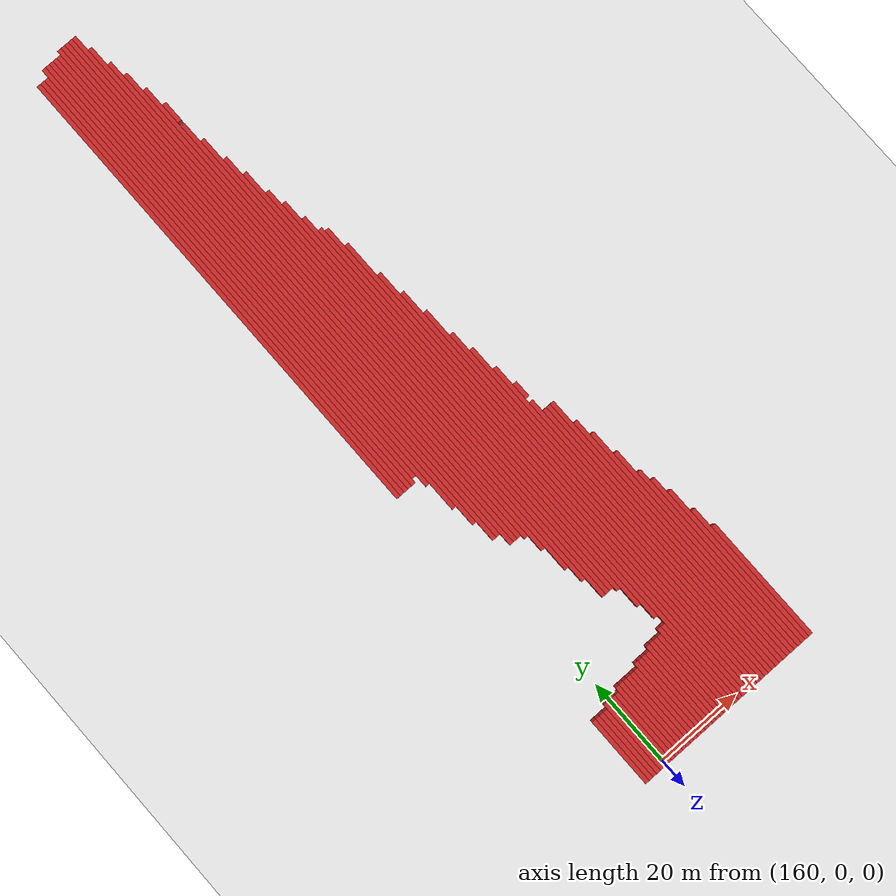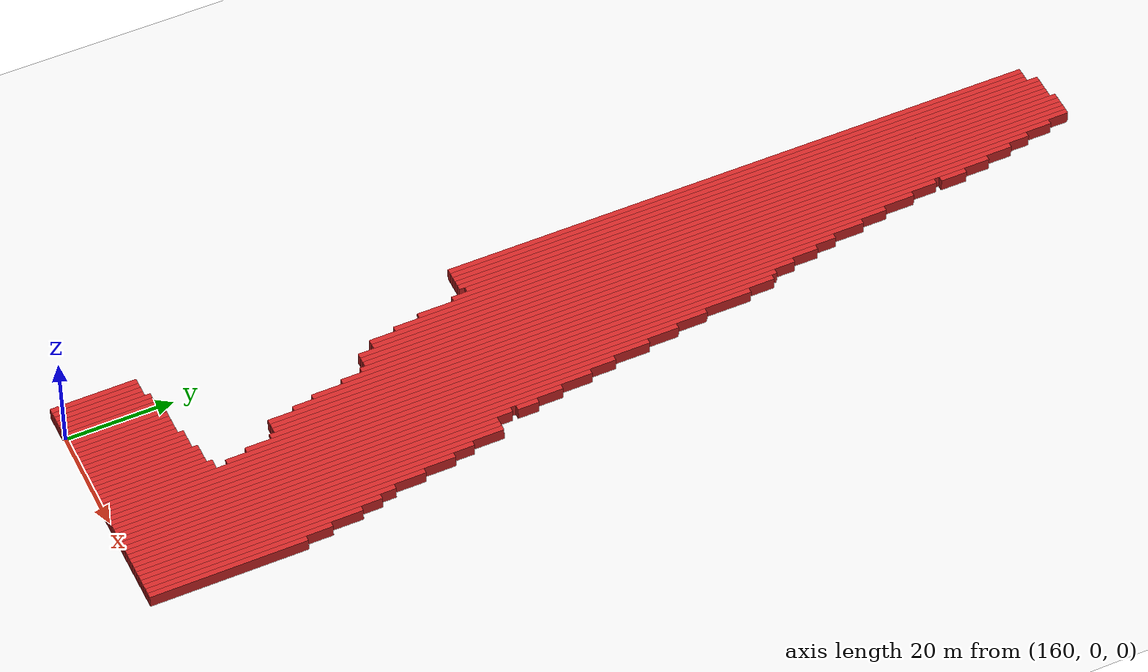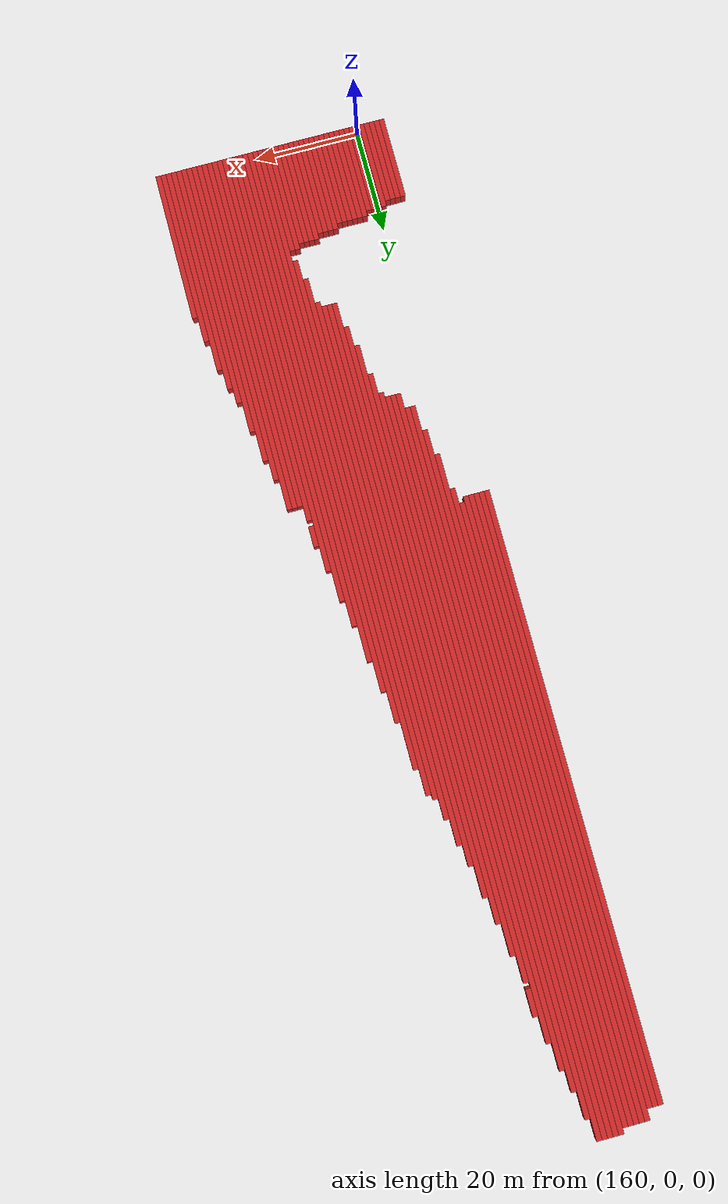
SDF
<sdf version="1.4">
 <world name="1_wall">
  <model name="ground_plane">
   <static>1</static>
   <link name="link">
    <collision name="collision">
     <geometry><plane><normal>0 0 1</normal><size>1000 1000</size></plane></geometry>
     <surface><friction><ode><mu>100</mu><mu2>50</mu2></ode></friction></surface>
    </collision>
    <visual name="visual">
     <cast_shadows>0</cast_shadows>
     <geometry><plane><normal>0 0 1</normal><size>10000 10000</size></plane></geometry>
     <material>
      <script><uri>file://media/materials/scripts/gazebo.material</uri><name>Gazebo/White</name></script>
     </material>
    </visual>
    <velocity_decay><linear>0</linear><angular>0</angular></velocity_decay>
   </link>
  </model>
  <model name="Wall_359">
   <static>1</static>
   <link name="Wall_359">
    <collision name="Wall_Collision_359">
     <geometry><box><size>16.0 1.0 2.5</size></box></geometry>
     <pose>0 0 1.25 0 -0 0</pose>
    </collision>
    <visual name="Wall_Visual_359">
     <pose>0 0 1.25 0 -0 0</pose>
     <geometry><box><size>16.0 1.0 2.5</size></box></geometry>
     <material>
      <script><uri>file://media/materials/scripts/gazebo.material</uri><name>Gazebo/Red</name></script>
     </material>
    </visual>
    <velocity_decay><linear>0</linear><angular>0</angular></velocity_decay>
    <pose>155.0 7.5 0 0 0 1.5707963267948966</pose>
   </link>
  </model>
  <model name="Wall_360">
   <static>1</static>
   <link name="Wall_360">
    <collision name="Wall_Collision_360">
     <geometry><box><size>113.0 1.0 2.5</size></box></geometry>
     <pose>0 0 1.25 0 -0 0</pose>
    </collision>
    <visual name="Wall_Visual_360">
     <pose>0 0 1.25 0 -0 0</pose>
     <geometry><box><size>113.0 1.0 2.5</size></box></geometry>
     <material>
      <script><uri>file://media/materials/scripts/gazebo.material</uri><name>Gazebo/Red</name></script>
     </material>
    </visual>
    <velocity_decay><linear>0</linear><angular>0</angular></velocity_decay>
    <pose>155.0 131.0 0 0 0 1.5707963267948966</pose>
   </link>
  </model>
  <model name="Wall_361">
   <static>1</static>
   <link name="Wall_361">
    <collision name="Wall_Collision_361">
     <geometry><box><size>16.0 1.0 2.5</size></box></geometry>
     <pose>0 0 1.25 0 -0 0</pose>
    </collision>
    <visual name="Wall_Visual_361">
     <pose>0 0 1.25 0 -0 0</pose>
     <geometry><box><size>16.0 1.0 2.5</size></box></geometry>
     <material>
      <script><uri>file://media/materials/scripts/gazebo.material</uri><name>Gazebo/Red</name></script>
     </material>
    </visual>
    <velocity_decay><linear>0</linear><angular>0</angular></velocity_decay>
    <pose>156.0 7.5 0 0 0 1.5707963267948966</pose>
   </link>
  </model>
  <model name="Wall_362">
   <static>1</static>
   <link name="Wall_362">
    <collision name="Wall_Collision_362">
     <geometry><box><size>113.0 1.0 2.5</size></box></geometry>
     <pose>0 0 1.25 0 -0 0</pose>
    </collision>
    <visual name="Wall_Visual_362">
     <pose>0 0 1.25 0 -0 0</pose>
     <geometry><box><size>113.0 1.0 2.5</size></box></geometry>
     <material>
      <script><uri>file://media/materials/scripts/gazebo.material</uri><name>Gazebo/Red</name></script>
     </material>
    </visual>
    <velocity_decay><linear>0</linear><angular>0</angular></velocity_decay>
    <pose>156.0 131.0 0 0 0 1.5707963267948966</pose>
   </link>
  </model>
  <model name="Wall_363">
   <static>1</static>
   <link name="Wall_363">
    <collision name="Wall_Collision_363">
     <geometry><box><size>16.0 1.0 2.5</size></box></geometry>
     <pose>0 0 1.25 0 -0 0</pose>
    </collision>
    <visual name="Wall_Visual_363">
     <pose>0 0 1.25 0 -0 0</pose>
     <geometry><box><size>16.0 1.0 2.5</size></box></geometry>
     <material>
      <script><uri>file://media/materials/scripts/gazebo.material</uri><name>Gazebo/Red</name></script>
     </material>
    </visual>
    <velocity_decay><linear>0</linear><angular>0</angular></velocity_decay>
    <pose>157.0 7.5 0 0 0 1.5707963267948966</pose>
   </link>
  </model>
  <model name="Wall_364">
   <static>1</static>
   <link name="Wall_364">
    <collision name="Wall_Collision_364">
     <geometry><box><size>113.0 1.0 2.5</size></box></geometry>
     <pose>0 0 1.25 0 -0 0</pose>
    </collision>
    <visual name="Wall_Visual_364">
     <pose>0 0 1.25 0 -0 0</pose>
     <geometry><box><size>113.0 1.0 2.5</size></box></geometry>
     <material>
      <script><uri>file://media/materials/scripts/gazebo.material</uri><name>Gazebo/Red</name></script>
     </material>
    </visual>
    <velocity_decay><linear>0</linear><angular>0</angular></velocity_decay>
    <pose>157.0 131.0 0 0 0 1.5707963267948966</pose>
   </link>
  </model>
  <model name="Wall_365">
   <static>1</static>
   <link name="Wall_365">
    <collision name="Wall_Collision_365">
     <geometry><box><size>16.0 1.0 2.5</size></box></geometry>
     <pose>0 0 1.25 0 -0 0</pose>
    </collision>
    <visual name="Wall_Visual_365">
     <pose>0 0 1.25 0 -0 0</pose>
     <geometry><box><size>16.0 1.0 2.5</size></box></geometry>
     <material>
      <script><uri>file://media/materials/scripts/gazebo.material</uri><name>Gazebo/Red</name></script>
     </material>
    </visual>
    <velocity_decay><linear>0</linear><angular>0</angular></velocity_decay>
    <pose>158.0 7.5 0 0 0 1.5707963267948966</pose>
   </link>
  </model>
  <model name="Wall_366">
   <static>1</static>
   <link name="Wall_366">
    <collision name="Wall_Collision_366">
     <geometry><box><size>115.0 1.0 2.5</size></box></geometry>
     <pose>0 0 1.25 0 -0 0</pose>
    </collision>
    <visual name="Wall_Visual_366">
     <pose>0 0 1.25 0 -0 0</pose>
     <geometry><box><size>115.0 1.0 2.5</size></box></geometry>
     <material>
      <script><uri>file://media/materials/scripts/gazebo.material</uri><name>Gazebo/Red</name></script>
     </material>
    </visual>
    <velocity_decay><linear>0</linear><angular>0</angular></velocity_decay>
    <pose>158.0 132.0 0 0 0 1.5707963267948966</pose>
   </link>
  </model>
  <model name="Wall_367">
   <static>1</static>
   <link name="Wall_367">
    <collision name="Wall_Collision_367">
     <geometry><box><size>17.0 1.0 2.5</size></box></geometry>
     <pose>0 0 1.25 0 -0 0</pose>
    </collision>
    <visual name="Wall_Visual_367">
     <pose>0 0 1.25 0 -0 0</pose>
     <geometry><box><size>17.0 1.0 2.5</size></box></geometry>
     <material>
      <script><uri>file://media/materials/scripts/gazebo.material</uri><name>Gazebo/Red</name></script>
     </material>
    </visual>
    <velocity_decay><linear>0</linear><angular>0</angular></velocity_decay>
    <pose>159.0 8.0 0 0 0 1.5707963267948966</pose>
   </link>
  </model>
  <model name="Wall_368">
   <static>1</static>
   <link name="Wall_368">
    <collision name="Wall_Collision_368">
     <geometry><box><size>115.0 1.0 2.5</size></box></geometry>
     <pose>0 0 1.25 0 -0 0</pose>
    </collision>
    <visual name="Wall_Visual_368">
     <pose>0 0 1.25 0 -0 0</pose>
     <geometry><box><size>115.0 1.0 2.5</size></box></geometry>
     <material>
      <script><uri>file://media/materials/scripts/gazebo.material</uri><name>Gazebo/Red</name></script>
     </material>
    </visual>
    <velocity_decay><linear>0</linear><angular>0</angular></velocity_decay>
    <pose>159.0 132.0 0 0 0 1.5707963267948966</pose>
   </link>
  </model>
  <model name="Wall_369">
   <static>1</static>
   <link name="Wall_369">
    <collision name="Wall_Collision_369">
     <geometry><box><size>17.0 1.0 2.5</size></box></geometry>
     <pose>0 0 1.25 0 -0 0</pose>
    </collision>
    <visual name="Wall_Visual_369">
     <pose>0 0 1.25 0 -0 0</pose>
     <geometry><box><size>17.0 1.0 2.5</size></box></geometry>
     <material>
      <script><uri>file://media/materials/scripts/gazebo.material</uri><name>Gazebo/Red</name></script>
     </material>
    </visual>
    <velocity_decay><linear>0</linear><angular>0</angular></velocity_decay>
    <pose>160.0 8.0 0 0 0 1.5707963267948966</pose>
   </link>
  </model>
  <model name="Wall_370">
   <static>1</static>
   <link name="Wall_370">
    <collision name="Wall_Collision_370">
     <geometry><box><size>114.0 1.0 2.5</size></box></geometry>
     <pose>0 0 1.25 0 -0 0</pose>
    </collision>
    <visual name="Wall_Visual_370">
     <pose>0 0 1.25 0 -0 0</pose>
     <geometry><box><size>114.0 1.0 2.5</size></box></geometry>
     <material>
      <script><uri>file://media/materials/scripts/gazebo.material</uri><name>Gazebo/Red</name></script>
     </material>
    </visual>
    <velocity_decay><linear>0</linear><angular>0</angular></velocity_decay>
    <pose>160.0 132.5 0 0 0 1.5707963267948966</pose>
   </link>
  </model>
  <model name="Wall_371">
   <static>1</static>
   <link name="Wall_371">
    <collision name="Wall_Collision_371">
     <geometry><box><size>17.0 1.0 2.5</size></box></geometry>
     <pose>0 0 1.25 0 -0 0</pose>
    </collision>
    <visual name="Wall_Visual_371">
     <pose>0 0 1.25 0 -0 0</pose>
     <geometry><box><size>17.0 1.0 2.5</size></box></geometry>
     <material>
      <script><uri>file://media/materials/scripts/gazebo.material</uri><name>Gazebo/Red</name></script>
     </material>
    </visual>
    <velocity_decay><linear>0</linear><angular>0</angular></velocity_decay>
    <pose>161.0 8.0 0 0 0 1.5707963267948966</pose>
   </link>
  </model>
  <model name="Wall_372">
   <static>1</static>
   <link name="Wall_372">
    <collision name="Wall_Collision_372">
     <geometry><box><size>117.0 1.0 2.5</size></box></geometry>
     <pose>0 0 1.25 0 -0 0</pose>
    </collision>
    <visual name="Wall_Visual_372">
     <pose>0 0 1.25 0 -0 0</pose>
     <geometry><box><size>117.0 1.0 2.5</size></box></geometry>
     <material>
      <script><uri>file://media/materials/scripts/gazebo.material</uri><name>Gazebo/Red</name></script>
     </material>
    </visual>
    <velocity_decay><linear>0</linear><angular>0</angular></velocity_decay>
    <pose>161.0 131.0 0 0 0 1.5707963267948966</pose>
   </link>
  </model>
  <model name="Wall_373">
   <static>1</static>
   <link name="Wall_373">
    <collision name="Wall_Collision_373">
     <geometry><box><size>17.0 1.0 2.5</size></box></geometry>
     <pose>0 0 1.25 0 -0 0</pose>
    </collision>
    <visual name="Wall_Visual_373">
     <pose>0 0 1.25 0 -0 0</pose>
     <geometry><box><size>17.0 1.0 2.5</size></box></geometry>
     <material>
      <script><uri>file://media/materials/scripts/gazebo.material</uri><name>Gazebo/Red</name></script>
     </material>
    </visual>
    <velocity_decay><linear>0</linear><angular>0</angular></velocity_decay>
    <pose>162.0 8.0 0 0 0 1.5707963267948966</pose>
   </link>
  </model>
  <model name="Wall_374">
   <static>1</static>
   <link name="Wall_374">
    <collision name="Wall_Collision_374">
     <geometry><box><size>124.0 1.0 2.5</size></box></geometry>
     <pose>0 0 1.25 0 -0 0</pose>
    </collision>
    <visual name="Wall_Visual_374">
     <pose>0 0 1.25 0 -0 0</pose>
     <geometry><box><size>124.0 1.0 2.5</size></box></geometry>
     <material>
      <script><uri>file://media/materials/scripts/gazebo.material</uri><name>Gazebo/Red</name></script>
     </material>
    </visual>
    <velocity_decay><linear>0</linear><angular>0</angular></velocity_decay>
    <pose>162.0 127.5 0 0 0 1.5707963267948966</pose>
   </link>
  </model>
  <model name="Wall_375">
   <static>1</static>
   <link name="Wall_375">
    <collision name="Wall_Collision_375">
     <geometry><box><size>18.0 1.0 2.5</size></box></geometry>
     <pose>0 0 1.25 0 -0 0</pose>
    </collision>
    <visual name="Wall_Visual_375">
     <pose>0 0 1.25 0 -0 0</pose>
     <geometry><box><size>18.0 1.0 2.5</size></box></geometry>
     <material>
      <script><uri>file://media/materials/scripts/gazebo.material</uri><name>Gazebo/Red</name></script>
     </material>
    </visual>
    <velocity_decay><linear>0</linear><angular>0</angular></velocity_decay>
    <pose>163.0 8.5 0 0 0 1.5707963267948966</pose>
   </link>
  </model>
  <model name="Wall_376">
   <static>1</static>
   <link name="Wall_376">
    <collision name="Wall_Collision_376">
     <geometry><box><size>130.0 1.0 2.5</size></box></geometry>
     <pose>0 0 1.25 0 -0 0</pose>
    </collision>
    <visual name="Wall_Visual_376">
     <pose>0 0 1.25 0 -0 0</pose>
     <geometry><box><size>130.0 1.0 2.5</size></box></geometry>
     <material>
      <script><uri>file://media/materials/scripts/gazebo.material</uri><name>Gazebo/Red</name></script>
     </material>
    </visual>
    <velocity_decay><linear>0</linear><angular>0</angular></velocity_decay>
    <pose>163.0 125.5 0 0 0 1.5707963267948966</pose>
   </link>
  </model>
  <model name="Wall_377">
   <static>1</static>
   <link name="Wall_377">
    <collision name="Wall_Collision_377">
     <geometry><box><size>18.0 1.0 2.5</size></box></geometry>
     <pose>0 0 1.25 0 -0 0</pose>
    </collision>
    <visual name="Wall_Visual_377">
     <pose>0 0 1.25 0 -0 0</pose>
     <geometry><box><size>18.0 1.0 2.5</size></box></geometry>
     <material>
      <script><uri>file://media/materials/scripts/gazebo.material</uri><name>Gazebo/Red</name></script>
     </material>
    </visual>
    <velocity_decay><linear>0</linear><angular>0</angular></velocity_decay>
    <pose>164.0 8.5 0 0 0 1.5707963267948966</pose>
   </link>
  </model>
  <model name="Wall_378">
   <static>1</static>
   <link name="Wall_378">
    <collision name="Wall_Collision_378">
     <geometry><box><size>135.0 1.0 2.5</size></box></geometry>
     <pose>0 0 1.25 0 -0 0</pose>
    </collision>
    <visual name="Wall_Visual_378">
     <pose>0 0 1.25 0 -0 0</pose>
     <geometry><box><size>135.0 1.0 2.5</size></box></geometry>
     <material>
      <script><uri>file://media/materials/scripts/gazebo.material</uri><name>Gazebo/Red</name></script>
     </material>
    </visual>
    <velocity_decay><linear>0</linear><angular>0</angular></velocity_decay>
    <pose>164.0 123.0 0 0 0 1.5707963267948966</pose>
   </link>
  </model>
  <model name="Wall_379">
   <static>1</static>
   <link name="Wall_379">
    <collision name="Wall_Collision_379">
     <geometry><box><size>18.0 1.0 2.5</size></box></geometry>
     <pose>0 0 1.25 0 -0 0</pose>
    </collision>
    <visual name="Wall_Visual_379">
     <pose>0 0 1.25 0 -0 0</pose>
     <geometry><box><size>18.0 1.0 2.5</size></box></geometry>
     <material>
      <script><uri>file://media/materials/scripts/gazebo.material</uri><name>Gazebo/Red</name></script>
     </material>
    </visual>
    <velocity_decay><linear>0</linear><angular>0</angular></velocity_decay>
    <pose>165.0 8.5 0 0 0 1.5707963267948966</pose>
   </link>
  </model>
  <model name="Wall_380">
   <static>1</static>
   <link name="Wall_380">
    <collision name="Wall_Collision_380">
     <geometry><box><size>135.0 1.0 2.5</size></box></geometry>
     <pose>0 0 1.25 0 -0 0</pose>
    </collision>
    <visual name="Wall_Visual_380">
     <pose>0 0 1.25 0 -0 0</pose>
     <geometry><box><size>135.0 1.0 2.5</size></box></geometry>
     <material>
      <script><uri>file://media/materials/scripts/gazebo.material</uri><name>Gazebo/Red</name></script>
     </material>
    </visual>
    <velocity_decay><linear>0</linear><angular>0</angular></velocity_decay>
    <pose>165.0 123.0 0 0 0 1.5707963267948966</pose>
   </link>
  </model>
  <model name="Wall_381">
   <static>1</static>
   <link name="Wall_381">
    <collision name="Wall_Collision_381">
     <geometry><box><size>18.0 1.0 2.5</size></box></geometry>
     <pose>0 0 1.25 0 -0 0</pose>
    </collision>
    <visual name="Wall_Visual_381">
     <pose>0 0 1.25 0 -0 0</pose>
     <geometry><box><size>18.0 1.0 2.5</size></box></geometry>
     <material>
      <script><uri>file://media/materials/scripts/gazebo.material</uri><name>Gazebo/Red</name></script>
     </material>
    </visual>
    <velocity_decay><linear>0</linear><angular>0</angular></velocity_decay>
    <pose>166.0 8.5 0 0 0 1.5707963267948966</pose>
   </link>
  </model>
  <model name="Wall_382">
   <static>1</static>
   <link name="Wall_382">
    <collision name="Wall_Collision_382">
     <geometry><box><size>138.0 1.0 2.5</size></box></geometry>
     <pose>0 0 1.25 0 -0 0</pose>
    </collision>
    <visual name="Wall_Visual_382">
     <pose>0 0 1.25 0 -0 0</pose>
     <geometry><box><size>138.0 1.0 2.5</size></box></geometry>
     <material>
      <script><uri>file://media/materials/scripts/gazebo.material</uri><name>Gazebo/Red</name></script>
     </material>
    </visual>
    <velocity_decay><linear>0</linear><angular>0</angular></velocity_decay>
    <pose>166.0 121.5 0 0 0 1.5707963267948966</pose>
   </link>
  </model>
  <model name="Wall_383">
   <static>1</static>
   <link name="Wall_383">
    <collision name="Wall_Collision_383">
     <geometry><box><size>18.0 1.0 2.5</size></box></geometry>
     <pose>0 0 1.25 0 -0 0</pose>
    </collision>
    <visual name="Wall_Visual_383">
     <pose>0 0 1.25 0 -0 0</pose>
     <geometry><box><size>18.0 1.0 2.5</size></box></geometry>
     <material>
      <script><uri>file://media/materials/scripts/gazebo.material</uri><name>Gazebo/Red</name></script>
     </material>
    </visual>
    <velocity_decay><linear>0</linear><angular>0</angular></velocity_decay>
    <pose>167.0 8.5 0 0 0 1.5707963267948966</pose>
   </link>
  </model>
  <model name="Wall_384">
   <static>1</static>
   <link name="Wall_384">
    <collision name="Wall_Collision_384">
     <geometry><box><size>138.0 1.0 2.5</size></box></geometry>
     <pose>0 0 1.25 0 -0 0</pose>
    </collision>
    <visual name="Wall_Visual_384">
     <pose>0 0 1.25 0 -0 0</pose>
     <geometry><box><size>138.0 1.0 2.5</size></box></geometry>
     <material>
      <script><uri>file://media/materials/scripts/gazebo.material</uri><name>Gazebo/Red</name></script>
     </material>
    </visual>
    <velocity_decay><linear>0</linear><angular>0</angular></velocity_decay>
    <pose>167.0 121.5 0 0 0 1.5707963267948966</pose>
   </link>
  </model>
  <model name="Wall_385">
   <static>1</static>
   <link name="Wall_385">
    <collision name="Wall_Collision_385">
     <geometry><box><size>18.0 1.0 2.5</size></box></geometry>
     <pose>0 0 1.25 0 -0 0</pose>
    </collision>
    <visual name="Wall_Visual_385">
     <pose>0 0 1.25 0 -0 0</pose>
     <geometry><box><size>18.0 1.0 2.5</size></box></geometry>
     <material>
      <script><uri>file://media/materials/scripts/gazebo.material</uri><name>Gazebo/Red</name></script>
     </material>
    </visual>
    <velocity_decay><linear>0</linear><angular>0</angular></velocity_decay>
    <pose>168.0 8.5 0 0 0 1.5707963267948966</pose>
   </link>
  </model>
  <model name="Wall_386">
   <static>1</static>
   <link name="Wall_386">
    <collision name="Wall_Collision_386">
     <geometry><box><size>134.0 1.0 2.5</size></box></geometry>
     <pose>0 0 1.25 0 -0 0</pose>
    </collision>
    <visual name="Wall_Visual_386">
     <pose>0 0 1.25 0 -0 0</pose>
     <geometry><box><size>134.0 1.0 2.5</size></box></geometry>
     <material>
      <script><uri>file://media/materials/scripts/gazebo.material</uri><name>Gazebo/Red</name></script>
     </material>
    </visual>
    <velocity_decay><linear>0</linear><angular>0</angular></velocity_decay>
    <pose>168.0 119.5 0 0 0 1.5707963267948966</pose>
   </link>
  </model>
  <model name="Wall_387">
   <static>1</static>
   <link name="Wall_387">
    <collision name="Wall_Collision_387">
     <geometry><box><size>19.0 1.0 2.5</size></box></geometry>
     <pose>0 0 1.25 0 -0 0</pose>
    </collision>
    <visual name="Wall_Visual_387">
     <pose>0 0 1.25 0 -0 0</pose>
     <geometry><box><size>19.0 1.0 2.5</size></box></geometry>
     <material>
      <script><uri>file://media/materials/scripts/gazebo.material</uri><name>Gazebo/Red</name></script>
     </material>
    </visual>
    <velocity_decay><linear>0</linear><angular>0</angular></velocity_decay>
    <pose>169.0 9.0 0 0 0 1.5707963267948966</pose>
   </link>
  </model>
  <model name="Wall_388">
   <static>1</static>
   <link name="Wall_388">
    <collision name="Wall_Collision_388">
     <geometry><box><size>130.0 1.0 2.5</size></box></geometry>
     <pose>0 0 1.25 0 -0 0</pose>
    </collision>
    <visual name="Wall_Visual_388">
     <pose>0 0 1.25 0 -0 0</pose>
     <geometry><box><size>130.0 1.0 2.5</size></box></geometry>
     <material>
      <script><uri>file://media/materials/scripts/gazebo.material</uri><name>Gazebo/Red</name></script>
     </material>
    </visual>
    <velocity_decay><linear>0</linear><angular>0</angular></velocity_decay>
    <pose>169.0 116.5 0 0 0 1.5707963267948966</pose>
   </link>
  </model>
  <model name="Wall_389">
   <static>1</static>
   <link name="Wall_389">
    <collision name="Wall_Collision_389">
     <geometry><box><size>19.0 1.0 2.5</size></box></geometry>
     <pose>0 0 1.25 0 -0 0</pose>
    </collision>
    <visual name="Wall_Visual_389">
     <pose>0 0 1.25 0 -0 0</pose>
     <geometry><box><size>19.0 1.0 2.5</size></box></geometry>
     <material>
      <script><uri>file://media/materials/scripts/gazebo.material</uri><name>Gazebo/Red</name></script>
     </material>
    </visual>
    <velocity_decay><linear>0</linear><angular>0</angular></velocity_decay>
    <pose>170.0 9.0 0 0 0 1.5707963267948966</pose>
   </link>
  </model>
  <model name="Wall_390">
   <static>1</static>
   <link name="Wall_390">
    <collision name="Wall_Collision_390">
     <geometry><box><size>130.0 1.0 2.5</size></box></geometry>
     <pose>0 0 1.25 0 -0 0</pose>
    </collision>
    <visual name="Wall_Visual_390">
     <pose>0 0 1.25 0 -0 0</pose>
     <geometry><box><size>130.0 1.0 2.5</size></box></geometry>
     <material>
      <script><uri>file://media/materials/scripts/gazebo.material</uri><name>Gazebo/Red</name></script>
     </material>
    </visual>
    <velocity_decay><linear>0</linear><angular>0</angular></velocity_decay>
    <pose>170.0 112.5 0 0 0 1.5707963267948966</pose>
   </link>
  </model>
  <model name="Wall_391">
   <static>1</static>
   <link name="Wall_391">
    <collision name="Wall_Collision_391">
     <geometry><box><size>19.0 1.0 2.5</size></box></geometry>
     <pose>0 0 1.25 0 -0 0</pose>
    </collision>
    <visual name="Wall_Visual_391">
     <pose>0 0 1.25 0 -0 0</pose>
     <geometry><box><size>19.0 1.0 2.5</size></box></geometry>
     <material>
      <script><uri>file://media/materials/scripts/gazebo.material</uri><name>Gazebo/Red</name></script>
     </material>
    </visual>
    <velocity_decay><linear>0</linear><angular>0</angular></velocity_decay>
    <pose>171.0 9.0 0 0 0 1.5707963267948966</pose>
   </link>
  </model>
  <model name="Wall_392">
   <static>1</static>
   <link name="Wall_392">
    <collision name="Wall_Collision_392">
     <geometry><box><size>131.0 1.0 2.5</size></box></geometry>
     <pose>0 0 1.25 0 -0 0</pose>
    </collision>
    <visual name="Wall_Visual_392">
     <pose>0 0 1.25 0 -0 0</pose>
     <geometry><box><size>131.0 1.0 2.5</size></box></geometry>
     <material>
      <script><uri>file://media/materials/scripts/gazebo.material</uri><name>Gazebo/Red</name></script>
     </material>
    </visual>
    <velocity_decay><linear>0</linear><angular>0</angular></velocity_decay>
    <pose>171.0 107.0 0 0 0 1.5707963267948966</pose>
   </link>
  </model>
  <model name="Wall_393">
   <static>1</static>
   <link name="Wall_393">
    <collision name="Wall_Collision_393">
     <geometry><box><size>19.0 1.0 2.5</size></box></geometry>
     <pose>0 0 1.25 0 -0 0</pose>
    </collision>
    <visual name="Wall_Visual_393">
     <pose>0 0 1.25 0 -0 0</pose>
     <geometry><box><size>19.0 1.0 2.5</size></box></geometry>
     <material>
      <script><uri>file://media/materials/scripts/gazebo.material</uri><name>Gazebo/Red</name></script>
     </material>
    </visual>
    <velocity_decay><linear>0</linear><angular>0</angular></velocity_decay>
    <pose>172.0 9.0 0 0 0 1.5707963267948966</pose>
   </link>
  </model>
  <model name="Wall_394">
   <static>1</static>
   <link name="Wall_394">
    <collision name="Wall_Collision_394">
     <geometry><box><size>124.0 1.0 2.5</size></box></geometry>
     <pose>0 0 1.25 0 -0 0</pose>
    </collision>
    <visual name="Wall_Visual_394">
     <pose>0 0 1.25 0 -0 0</pose>
     <geometry><box><size>124.0 1.0 2.5</size></box></geometry>
     <material>
      <script><uri>file://media/materials/scripts/gazebo.material</uri><name>Gazebo/Red</name></script>
     </material>
    </visual>
    <velocity_decay><linear>0</linear><angular>0</angular></velocity_decay>
    <pose>172.0 99.5 0 0 0 1.5707963267948966</pose>
   </link>
  </model>
  <model name="Wall_395">
   <static>1</static>
   <link name="Wall_395">
    <collision name="Wall_Collision_395">
     <geometry><box><size>5.0 1.0 2.5</size></box></geometry>
     <pose>0 0 1.25 0 -0 0</pose>
    </collision>
    <visual name="Wall_Visual_395">
     <pose>0 0 1.25 0 -0 0</pose>
     <geometry><box><size>5.0 1.0 2.5</size></box></geometry>
     <material>
      <script><uri>file://media/materials/scripts/gazebo.material</uri><name>Gazebo/Red</name></script>
     </material>
    </visual>
    <velocity_decay><linear>0</linear><angular>0</angular></velocity_decay>
    <pose>172.0 165.0 0 0 0 1.5707963267948966</pose>
   </link>
  </model>
  <model name="Wall_396">
   <static>1</static>
   <link name="Wall_396">
    <collision name="Wall_Collision_396">
     <geometry><box><size>20.0 1.0 2.5</size></box></geometry>
     <pose>0 0 1.25 0 -0 0</pose>
    </collision>
    <visual name="Wall_Visual_396">
     <pose>0 0 1.25 0 -0 0</pose>
     <geometry><box><size>20.0 1.0 2.5</size></box></geometry>
     <material>
      <script><uri>file://media/materials/scripts/gazebo.material</uri><name>Gazebo/Red</name></script>
     </material>
    </visual>
    <velocity_decay><linear>0</linear><angular>0</angular></velocity_decay>
    <pose>173.0 9.5 0 0 0 1.5707963267948966</pose>
   </link>
  </model>
  <model name="Wall_397">
   <static>1</static>
   <link name="Wall_397">
    <collision name="Wall_Collision_397">
     <geometry><box><size>124.0 1.0 2.5</size></box></geometry>
     <pose>0 0 1.25 0 -0 0</pose>
    </collision>
    <visual name="Wall_Visual_397">
     <pose>0 0 1.25 0 -0 0</pose>
     <geometry><box><size>124.0 1.0 2.5</size></box></geometry>
     <material>
      <script><uri>file://media/materials/scripts/gazebo.material</uri><name>Gazebo/Red</name></script>
     </material>
    </visual>
    <velocity_decay><linear>0</linear><angular>0</angular></velocity_decay>
    <pose>173.0 94.5 0 0 0 1.5707963267948966</pose>
   </link>
  </model>
  <model name="Wall_398">
   <static>1</static>
   <link name="Wall_398">
    <collision name="Wall_Collision_398">
     <geometry><box><size>20.0 1.0 2.5</size></box></geometry>
     <pose>0 0 1.25 0 -0 0</pose>
    </collision>
    <visual name="Wall_Visual_398">
     <pose>0 0 1.25 0 -0 0</pose>
     <geometry><box><size>20.0 1.0 2.5</size></box></geometry>
     <material>
      <script><uri>file://media/materials/scripts/gazebo.material</uri><name>Gazebo/Red</name></script>
     </material>
    </visual>
    <velocity_decay><linear>0</linear><angular>0</angular></velocity_decay>
    <pose>174.0 9.5 0 0 0 1.5707963267948966</pose>
   </link>
  </model>
  <model name="Wall_399">
   <static>1</static>
   <link name="Wall_399">
    <collision name="Wall_Collision_399">
     <geometry><box><size>118.0 1.0 2.5</size></box></geometry>
     <pose>0 0 1.25 0 -0 0</pose>
    </collision>
    <visual name="Wall_Visual_399">
     <pose>0 0 1.25 0 -0 0</pose>
     <geometry><box><size>118.0 1.0 2.5</size></box></geometry>
     <material>
      <script><uri>file://media/materials/scripts/gazebo.material</uri><name>Gazebo/Red</name></script>
     </material>
    </visual>
    <velocity_decay><linear>0</linear><angular>0</angular></velocity_decay>
    <pose>174.0 91.5 0 0 0 1.5707963267948966</pose>
   </link>
  </model>
  <model name="Wall_400">
   <static>1</static>
   <link name="Wall_400">
    <collision name="Wall_Collision_400">
     <geometry><box><size>20.0 1.0 2.5</size></box></geometry>
     <pose>0 0 1.25 0 -0 0</pose>
    </collision>
    <visual name="Wall_Visual_400">
     <pose>0 0 1.25 0 -0 0</pose>
     <geometry><box><size>20.0 1.0 2.5</size></box></geometry>
     <material>
      <script><uri>file://media/materials/scripts/gazebo.material</uri><name>Gazebo/Red</name></script>
     </material>
    </visual>
    <velocity_decay><linear>0</linear><angular>0</angular></velocity_decay>
    <pose>175.0 9.5 0 0 0 1.5707963267948966</pose>
   </link>
  </model>
  <model name="Wall_401">
   <static>1</static>
   <link name="Wall_401">
    <collision name="Wall_Collision_401">
     <geometry><box><size>113.0 1.0 2.5</size></box></geometry>
     <pose>0 0 1.25 0 -0 0</pose>
    </collision>
    <visual name="Wall_Visual_401">
     <pose>0 0 1.25 0 -0 0</pose>
     <geometry><box><size>113.0 1.0 2.5</size></box></geometry>
     <material>
      <script><uri>file://media/materials/scripts/gazebo.material</uri><name>Gazebo/Red</name></script>
     </material>
    </visual>
    <velocity_decay><linear>0</linear><angular>0</angular></velocity_decay>
    <pose>175.0 89.0 0 0 0 1.5707963267948966</pose>
   </link>
  </model>
  <model name="Wall_402">
   <static>1</static>
   <link name="Wall_402">
    <collision name="Wall_Collision_402">
     <geometry><box><size>20.0 1.0 2.5</size></box></geometry>
     <pose>0 0 1.25 0 -0 0</pose>
    </collision>
    <visual name="Wall_Visual_402">
     <pose>0 0 1.25 0 -0 0</pose>
     <geometry><box><size>20.0 1.0 2.5</size></box></geometry>
     <material>
      <script><uri>file://media/materials/scripts/gazebo.material</uri><name>Gazebo/Red</name></script>
     </material>
    </visual>
    <velocity_decay><linear>0</linear><angular>0</angular></velocity_decay>
    <pose>176.0 9.5 0 0 0 1.5707963267948966</pose>
   </link>
  </model>
  <model name="Wall_403">
   <static>1</static>
   <link name="Wall_403">
    <collision name="Wall_Collision_403">
     <geometry><box><size>108.0 1.0 2.5</size></box></geometry>
     <pose>0 0 1.25 0 -0 0</pose>
    </collision>
    <visual name="Wall_Visual_403">
     <pose>0 0 1.25 0 -0 0</pose>
     <geometry><box><size>108.0 1.0 2.5</size></box></geometry>
     <material>
      <script><uri>file://media/materials/scripts/gazebo.material</uri><name>Gazebo/Red</name></script>
     </material>
    </visual>
    <velocity_decay><linear>0</linear><angular>0</angular></velocity_decay>
    <pose>176.0 85.5 0 0 0 1.5707963267948966</pose>
   </link>
  </model>
  <model name="Wall_404">
   <static>1</static>
   <link name="Wall_404">
    <collision name="Wall_Collision_404">
     <geometry><box><size>21.0 1.0 2.5</size></box></geometry>
     <pose>0 0 1.25 0 -0 0</pose>
    </collision>
    <visual name="Wall_Visual_404">
     <pose>0 0 1.25 0 -0 0</pose>
     <geometry><box><size>21.0 1.0 2.5</size></box></geometry>
     <material>
      <script><uri>file://media/materials/scripts/gazebo.material</uri><name>Gazebo/Red</name></script>
     </material>
    </visual>
    <velocity_decay><linear>0</linear><angular>0</angular></velocity_decay>
    <pose>177.0 10.0 0 0 0 1.5707963267948966</pose>
   </link>
  </model>
  <model name="Wall_405">
   <static>1</static>
   <link name="Wall_405">
    <collision name="Wall_Collision_405">
     <geometry><box><size>109.0 1.0 2.5</size></box></geometry>
     <pose>0 0 1.25 0 -0 0</pose>
    </collision>
    <visual name="Wall_Visual_405">
     <pose>0 0 1.25 0 -0 0</pose>
     <geometry><box><size>109.0 1.0 2.5</size></box></geometry>
     <material>
      <script><uri>file://media/materials/scripts/gazebo.material</uri><name>Gazebo/Red</name></script>
     </material>
    </visual>
    <velocity_decay><linear>0</linear><angular>0</angular></velocity_decay>
    <pose>177.0 81.0 0 0 0 1.5707963267948966</pose>
   </link>
  </model>
  <model name="Wall_406">
   <static>1</static>
   <link name="Wall_406">
    <collision name="Wall_Collision_406">
     <geometry><box><size>21.0 1.0 2.5</size></box></geometry>
     <pose>0 0 1.25 0 -0 0</pose>
    </collision>
    <visual name="Wall_Visual_406">
     <pose>0 0 1.25 0 -0 0</pose>
     <geometry><box><size>21.0 1.0 2.5</size></box></geometry>
     <material>
      <script><uri>file://media/materials/scripts/gazebo.material</uri><name>Gazebo/Red</name></script>
     </material>
    </visual>
    <velocity_decay><linear>0</linear><angular>0</angular></velocity_decay>
    <pose>178.0 10.0 0 0 0 1.5707963267948966</pose>
   </link>
  </model>
  <model name="Wall_407">
   <static>1</static>
   <link name="Wall_407">
    <collision name="Wall_Collision_407">
     <geometry><box><size>108.0 1.0 2.5</size></box></geometry>
     <pose>0 0 1.25 0 -0 0</pose>
    </collision>
    <visual name="Wall_Visual_407">
     <pose>0 0 1.25 0 -0 0</pose>
     <geometry><box><size>108.0 1.0 2.5</size></box></geometry>
     <material>
      <script><uri>file://media/materials/scripts/gazebo.material</uri><name>Gazebo/Red</name></script>
     </material>
    </visual>
    <velocity_decay><linear>0</linear><angular>0</angular></velocity_decay>
    <pose>178.0 76.5 0 0 0 1.5707963267948966</pose>
   </link>
  </model>
  <model name="Wall_408">
   <static>1</static>
   <link name="Wall_408">
    <collision name="Wall_Collision_408">
     <geometry><box><size>127.0 1.0 2.5</size></box></geometry>
     <pose>0 0 1.25 0 -0 0</pose>
    </collision>
    <visual name="Wall_Visual_408">
     <pose>0 0 1.25 0 -0 0</pose>
     <geometry><box><size>127.0 1.0 2.5</size></box></geometry>
     <material>
      <script><uri>file://media/materials/scripts/gazebo.material</uri><name>Gazebo/Red</name></script>
     </material>
    </visual>
    <velocity_decay><linear>0</linear><angular>0</angular></velocity_decay>
    <pose>179.0 63.0 0 0 0 1.5707963267948966</pose>
   </link>
  </model>
  <model name="Wall_409">
   <static>1</static>
   <link name="Wall_409">
    <collision name="Wall_Collision_409">
     <geometry><box><size>126.0 1.0 2.5</size></box></geometry>
     <pose>0 0 1.25 0 -0 0</pose>
    </collision>
    <visual name="Wall_Visual_409">
     <pose>0 0 1.25 0 -0 0</pose>
     <geometry><box><size>126.0 1.0 2.5</size></box></geometry>
     <material>
      <script><uri>file://media/materials/scripts/gazebo.material</uri><name>Gazebo/Red</name></script>
     </material>
    </visual>
    <velocity_decay><linear>0</linear><angular>0</angular></velocity_decay>
    <pose>180.0 62.5 0 0 0 1.5707963267948966</pose>
   </link>
  </model>
  <model name="Wall_410">
   <static>1</static>
   <link name="Wall_410">
    <collision name="Wall_Collision_410">
     <geometry><box><size>121.0 1.0 2.5</size></box></geometry>
     <pose>0 0 1.25 0 -0 0</pose>
    </collision>
    <visual name="Wall_Visual_410">
     <pose>0 0 1.25 0 -0 0</pose>
     <geometry><box><size>121.0 1.0 2.5</size></box></geometry>
     <material>
      <script><uri>file://media/materials/scripts/gazebo.material</uri><name>Gazebo/Red</name></script>
     </material>
    </visual>
    <velocity_decay><linear>0</linear><angular>0</angular></velocity_decay>
    <pose>181.0 60.0 0 0 0 1.5707963267948966</pose>
   </link>
  </model>
  <model name="Wall_411">
   <static>1</static>
   <link name="Wall_411">
    <collision name="Wall_Collision_411">
     <geometry><box><size>112.0 1.0 2.5</size></box></geometry>
     <pose>0 0 1.25 0 -0 0</pose>
    </collision>
    <visual name="Wall_Visual_411">
     <pose>0 0 1.25 0 -0 0</pose>
     <geometry><box><size>112.0 1.0 2.5</size></box></geometry>
     <material>
      <script><uri>file://media/materials/scripts/gazebo.material</uri><name>Gazebo/Red</name></script>
     </material>
    </visual>
    <velocity_decay><linear>0</linear><angular>0</angular></velocity_decay>
    <pose>182.0 55.5 0 0 0 1.5707963267948966</pose>
   </link>
  </model>
  <model name="Wall_412">
   <static>1</static>
   <link name="Wall_412">
    <collision name="Wall_Collision_412">
     <geometry><box><size>106.0 1.0 2.5</size></box></geometry>
     <pose>0 0 1.25 0 -0 0</pose>
    </collision>
    <visual name="Wall_Visual_412">
     <pose>0 0 1.25 0 -0 0</pose>
     <geometry><box><size>106.0 1.0 2.5</size></box></geometry>
     <material>
      <script><uri>file://media/materials/scripts/gazebo.material</uri><name>Gazebo/Red</name></script>
     </material>
    </visual>
    <velocity_decay><linear>0</linear><angular>0</angular></velocity_decay>
    <pose>183.0 52.5 0 0 0 1.5707963267948966</pose>
   </link>
  </model>
  <model name="Wall_413">
   <static>1</static>
   <link name="Wall_413">
    <collision name="Wall_Collision_413">
     <geometry><box><size>100.0 1.0 2.5</size></box></geometry>
     <pose>0 0 1.25 0 -0 0</pose>
    </collision>
    <visual name="Wall_Visual_413">
     <pose>0 0 1.25 0 -0 0</pose>
     <geometry><box><size>100.0 1.0 2.5</size></box></geometry>
     <material>
      <script><uri>file://media/materials/scripts/gazebo.material</uri><name>Gazebo/Red</name></script>
     </material>
    </visual>
    <velocity_decay><linear>0</linear><angular>0</angular></velocity_decay>
    <pose>184.0 49.5 0 0 0 1.5707963267948966</pose>
   </link>
  </model>
  <model name="Wall_414">
   <static>1</static>
   <link name="Wall_414">
    <collision name="Wall_Collision_414">
     <geometry><box><size>93.0 1.0 2.5</size></box></geometry>
     <pose>0 0 1.25 0 -0 0</pose>
    </collision>
    <visual name="Wall_Visual_414">
     <pose>0 0 1.25 0 -0 0</pose>
     <geometry><box><size>93.0 1.0 2.5</size></box></geometry>
     <material>
      <script><uri>file://media/materials/scripts/gazebo.material</uri><name>Gazebo/Red</name></script>
     </material>
    </visual>
    <velocity_decay><linear>0</linear><angular>0</angular></velocity_decay>
    <pose>185.0 46.0 0 0 0 1.5707963267948966</pose>
   </link>
  </model>
  <model name="Wall_415">
   <static>1</static>
   <link name="Wall_415">
    <collision name="Wall_Collision_415">
     <geometry><box><size>88.0 1.0 2.5</size></box></geometry>
     <pose>0 0 1.25 0 -0 0</pose>
    </collision>
    <visual name="Wall_Visual_415">
     <pose>0 0 1.25 0 -0 0</pose>
     <geometry><box><size>88.0 1.0 2.5</size></box></geometry>
     <material>
      <script><uri>file://media/materials/scripts/gazebo.material</uri><name>Gazebo/Red</name></script>
     </material>
    </visual>
    <velocity_decay><linear>0</linear><angular>0</angular></velocity_decay>
    <pose>186.0 43.5 0 0 0 1.5707963267948966</pose>
   </link>
  </model>
  <model name="Wall_416">
   <static>1</static>
   <link name="Wall_416">
    <collision name="Wall_Collision_416">
     <geometry><box><size>82.0 1.0 2.5</size></box></geometry>
     <pose>0 0 1.25 0 -0 0</pose>
    </collision>
    <visual name="Wall_Visual_416">
     <pose>0 0 1.25 0 -0 0</pose>
     <geometry><box><size>82.0 1.0 2.5</size></box></geometry>
     <material>
      <script><uri>file://media/materials/scripts/gazebo.material</uri><name>Gazebo/Red</name></script>
     </material>
    </visual>
    <velocity_decay><linear>0</linear><angular>0</angular></velocity_decay>
    <pose>187.0 40.5 0 0 0 1.5707963267948966</pose>
   </link>
  </model>
  <model name="Wall_417">
   <static>1</static>
   <link name="Wall_417">
    <collision name="Wall_Collision_417">
     <geometry><box><size>72.0 1.0 2.5</size></box></geometry>
     <pose>0 0 1.25 0 -0 0</pose>
    </collision>
    <visual name="Wall_Visual_417">
     <pose>0 0 1.25 0 -0 0</pose>
     <geometry><box><size>72.0 1.0 2.5</size></box></geometry>
     <material>
      <script><uri>file://media/materials/scripts/gazebo.material</uri><name>Gazebo/Red</name></script>
     </material>
    </visual>
    <velocity_decay><linear>0</linear><angular>0</angular></velocity_decay>
    <pose>188.0 35.5 0 0 0 1.5707963267948966</pose>
   </link>
  </model>
  <model name="Wall_418">
   <static>1</static>
   <link name="Wall_418">
    <collision name="Wall_Collision_418">
     <geometry><box><size>4.0 1.0 2.5</size></box></geometry>
     <pose>0 0 1.25 0 -0 0</pose>
    </collision>
    <visual name="Wall_Visual_418">
     <pose>0 0 1.25 0 -0 0</pose>
     <geometry><box><size>4.0 1.0 2.5</size></box></geometry>
     <material>
      <script><uri>file://media/materials/scripts/gazebo.material</uri><name>Gazebo/Red</name></script>
     </material>
    </visual>
    <velocity_decay><linear>0</linear><angular>0</angular></velocity_decay>
    <pose>188.0 74.5 0 0 0 1.5707963267948966</pose>
   </link>
  </model>
  <model name="Wall_419">
   <static>1</static>
   <link name="Wall_419">
    <collision name="Wall_Collision_419">
     <geometry><box><size>69.0 1.0 2.5</size></box></geometry>
     <pose>0 0 1.25 0 -0 0</pose>
    </collision>
    <visual name="Wall_Visual_419">
     <pose>0 0 1.25 0 -0 0</pose>
     <geometry><box><size>69.0 1.0 2.5</size></box></geometry>
     <material>
      <script><uri>file://media/materials/scripts/gazebo.material</uri><name>Gazebo/Red</name></script>
     </material>
    </visual>
    <velocity_decay><linear>0</linear><angular>0</angular></velocity_decay>
    <pose>189.0 34.0 0 0 0 1.5707963267948966</pose>
   </link>
  </model>
  <model name="Wall_420">
   <static>1</static>
   <link name="Wall_420">
    <collision name="Wall_Collision_420">
     <geometry><box><size>69.0 1.0 2.5</size></box></geometry>
     <pose>0 0 1.25 0 -0 0</pose>
    </collision>
    <visual name="Wall_Visual_420">
     <pose>0 0 1.25 0 -0 0</pose>
     <geometry><box><size>69.0 1.0 2.5</size></box></geometry>
     <material>
      <script><uri>file://media/materials/scripts/gazebo.material</uri><name>Gazebo/Red</name></script>
     </material>
    </visual>
    <velocity_decay><linear>0</linear><angular>0</angular></velocity_decay>
    <pose>190.0 34.0 0 0 0 1.5707963267948966</pose>
   </link>
  </model>
  <model name="Wall_421">
   <static>1</static>
   <link name="Wall_421">
    <collision name="Wall_Collision_421">
     <geometry><box><size>69.0 1.0 2.5</size></box></geometry>
     <pose>0 0 1.25 0 -0 0</pose>
    </collision>
    <visual name="Wall_Visual_421">
     <pose>0 0 1.25 0 -0 0</pose>
     <geometry><box><size>69.0 1.0 2.5</size></box></geometry>
     <material>
      <script><uri>file://media/materials/scripts/gazebo.material</uri><name>Gazebo/Red</name></script>
     </material>
    </visual>
    <velocity_decay><linear>0</linear><angular>0</angular></velocity_decay>
    <pose>191.0 34.0 0 0 0 1.5707963267948966</pose>
   </link>
  </model>
  <model name="Wall_422">
   <static>1</static>
   <link name="Wall_422">
    <collision name="Wall_Collision_422">
     <geometry><box><size>63.0 1.0 2.5</size></box></geometry>
     <pose>0 0 1.25 0 -0 0</pose>
    </collision>
    <visual name="Wall_Visual_422">
     <pose>0 0 1.25 0 -0 0</pose>
     <geometry><box><size>63.0 1.0 2.5</size></box></geometry>
     <material>
      <script><uri>file://media/materials/scripts/gazebo.material</uri><name>Gazebo/Red</name></script>
     </material>
    </visual>
    <velocity_decay><linear>0</linear><angular>0</angular></velocity_decay>
    <pose>192.0 31.0 0 0 0 1.5707963267948966</pose>
   </link>
  </model>
  <model name="Wall_423">
   <static>1</static>
   <link name="Wall_423">
    <collision name="Wall_Collision_423">
     <geometry><box><size>59.0 1.0 2.5</size></box></geometry>
     <pose>0 0 1.25 0 -0 0</pose>
    </collision>
    <visual name="Wall_Visual_423">
     <pose>0 0 1.25 0 -0 0</pose>
     <geometry><box><size>59.0 1.0 2.5</size></box></geometry>
     <material>
      <script><uri>file://media/materials/scripts/gazebo.material</uri><name>Gazebo/Red</name></script>
     </material>
    </visual>
    <velocity_decay><linear>0</linear><angular>0</angular></velocity_decay>
    <pose>193.0 29.0 0 0 0 1.5707963267948966</pose>
   </link>
  </model>
  <model name="Wall_424">
   <static>1</static>
   <link name="Wall_424">
    <collision name="Wall_Collision_424">
     <geometry><box><size>53.0 1.0 2.5</size></box></geometry>
     <pose>0 0 1.25 0 -0 0</pose>
    </collision>
    <visual name="Wall_Visual_424">
     <pose>0 0 1.25 0 -0 0</pose>
     <geometry><box><size>53.0 1.0 2.5</size></box></geometry>
     <material>
      <script><uri>file://media/materials/scripts/gazebo.material</uri><name>Gazebo/Red</name></script>
     </material>
    </visual>
    <velocity_decay><linear>0</linear><angular>0</angular></velocity_decay>
    <pose>194.0 26.0 0 0 0 1.5707963267948966</pose>
   </link>
  </model>
  <model name="Wall_425">
   <static>1</static>
   <link name="Wall_425">
    <collision name="Wall_Collision_425">
     <geometry><box><size>47.0 1.0 2.5</size></box></geometry>
     <pose>0 0 1.25 0 -0 0</pose>
    </collision>
    <visual name="Wall_Visual_425">
     <pose>0 0 1.25 0 -0 0</pose>
     <geometry><box><size>47.0 1.0 2.5</size></box></geometry>
     <material>
      <script><uri>file://media/materials/scripts/gazebo.material</uri><name>Gazebo/Red</name></script>
     </material>
    </visual>
    <velocity_decay><linear>0</linear><angular>0</angular></velocity_decay>
    <pose>195.0 23.0 0 0 0 1.5707963267948966</pose>
   </link>
  </model>
  <model name="Wall_426">
   <static>1</static>
   <link name="Wall_426">
    <collision name="Wall_Collision_426">
     <geometry><box><size>44.0 1.0 2.5</size></box></geometry>
     <pose>0 0 1.25 0 -0 0</pose>
    </collision>
    <visual name="Wall_Visual_426">
     <pose>0 0 1.25 0 -0 0</pose>
     <geometry><box><size>44.0 1.0 2.5</size></box></geometry>
     <material>
      <script><uri>file://media/materials/scripts/gazebo.material</uri><name>Gazebo/Red</name></script>
     </material>
    </visual>
    <velocity_decay><linear>0</linear><angular>0</angular></velocity_decay>
    <pose>196.0 21.5 0 0 0 1.5707963267948966</pose>
   </link>
  </model>
  <model name="Wall_427">
   <static>1</static>
   <link name="Wall_427">
    <collision name="Wall_Collision_427">
     <geometry><box><size>40.0 1.0 2.5</size></box></geometry>
     <pose>0 0 1.25 0 -0 0</pose>
    </collision>
    <visual name="Wall_Visual_427">
     <pose>0 0 1.25 0 -0 0</pose>
     <geometry><box><size>40.0 1.0 2.5</size></box></geometry>
     <material>
      <script><uri>file://media/materials/scripts/gazebo.material</uri><name>Gazebo/Red</name></script>
     </material>
    </visual>
    <velocity_decay><linear>0</linear><angular>0</angular></velocity_decay>
    <pose>197.0 19.5 0 0 0 1.5707963267948966</pose>
   </link>
  </model>
  <model name="Wall_428">
   <static>1</static>
   <link name="Wall_428">
    <collision name="Wall_Collision_428">
     <geometry><box><size>34.0 1.0 2.5</size></box></geometry>
     <pose>0 0 1.25 0 -0 0</pose>
    </collision>
    <visual name="Wall_Visual_428">
     <pose>0 0 1.25 0 -0 0</pose>
     <geometry><box><size>34.0 1.0 2.5</size></box></geometry>
     <material>
      <script><uri>file://media/materials/scripts/gazebo.material</uri><name>Gazebo/Red</name></script>
     </material>
    </visual>
    <velocity_decay><linear>0</linear><angular>0</angular></velocity_decay>
    <pose>198.0 16.5 0 0 0 1.5707963267948966</pose>
   </link>
  </model>
  <model name="Wall_429">
   <static>1</static>
   <link name="Wall_429">
    <collision name="Wall_Collision_429">
     <geometry><box><size>29.0 1.0 2.5</size></box></geometry>
     <pose>0 0 1.25 0 -0 0</pose>
    </collision>
    <visual name="Wall_Visual_429">
     <pose>0 0 1.25 0 -0 0</pose>
     <geometry><box><size>29.0 1.0 2.5</size></box></geometry>
     <material>
      <script><uri>file://media/materials/scripts/gazebo.material</uri><name>Gazebo/Red</name></script>
     </material>
    </visual>
    <velocity_decay><linear>0</linear><angular>0</angular></velocity_decay>
    <pose>199.0 14.0 0 0 0 1.5707963267948966</pose>
   </link>
  </model>
 </world>
</sdf>
